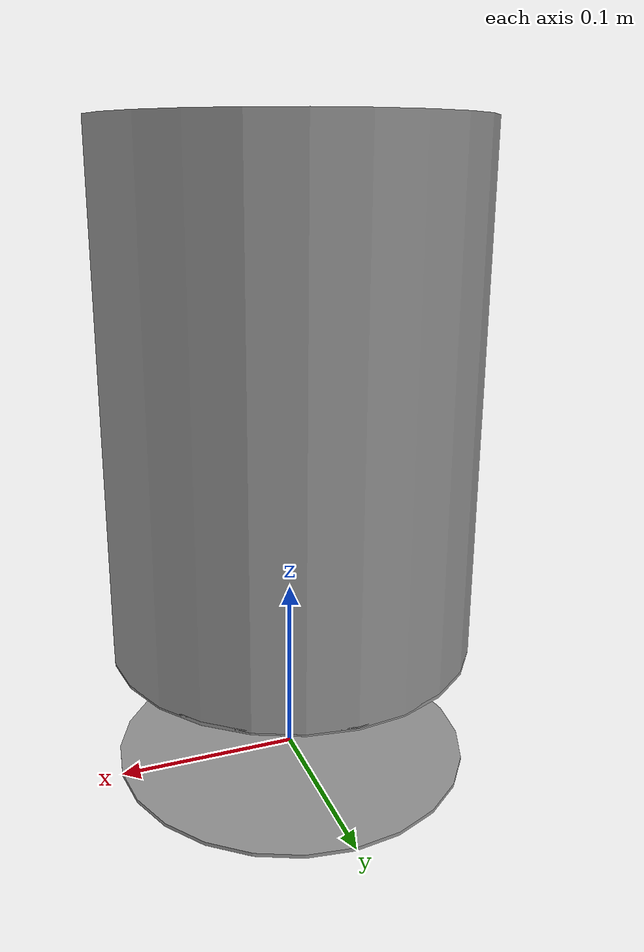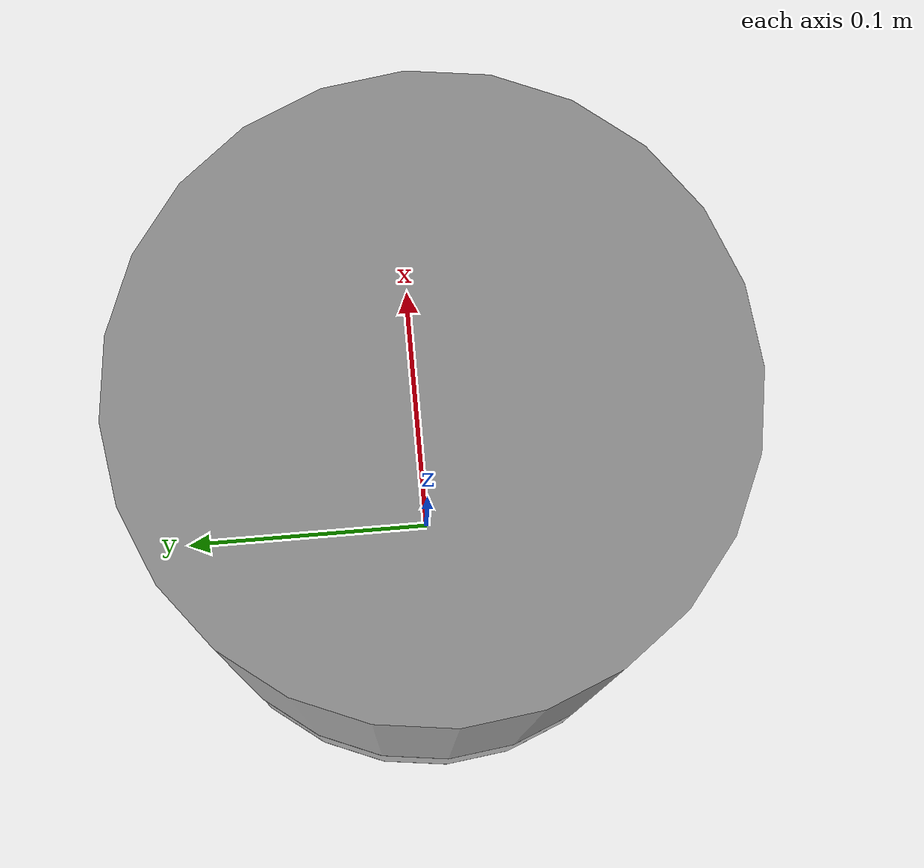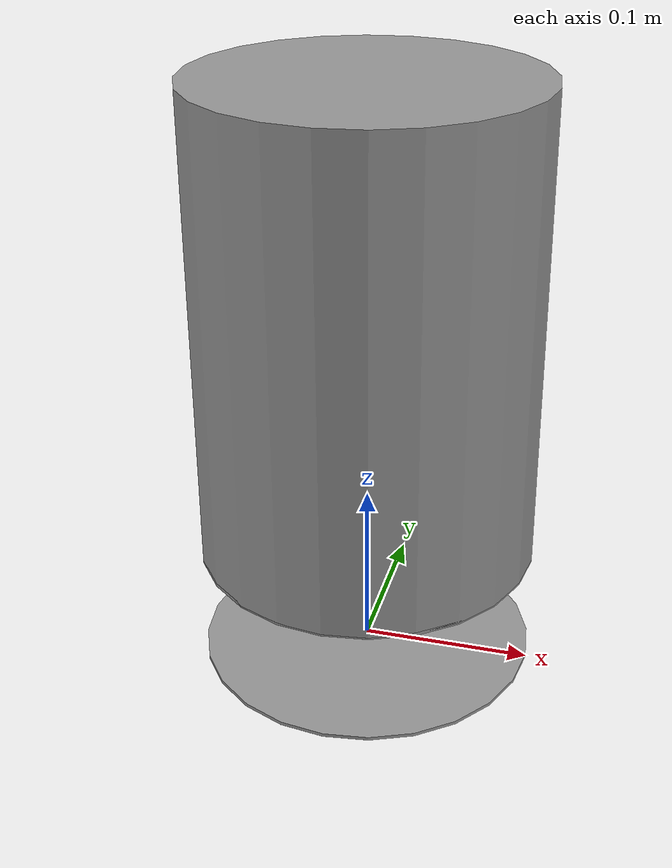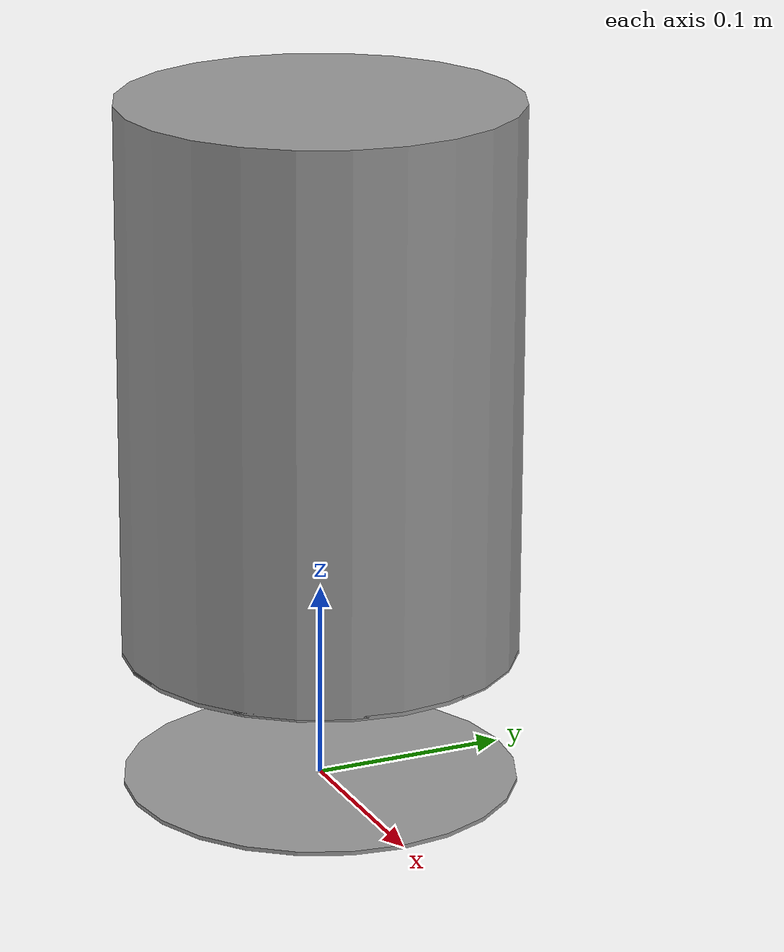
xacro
<?xml version="1.0"?>

<!-- XML namespaces -->
<robot xmlns:sensor="http://playerstage.sourceforge.net/gazebo/xmlschema/#sensor"
       xmlns:controller="http://playerstage.sourceforge.net/gazebo/xmlschema/#controller"
       xmlns:interface="http://playerstage.sourceforge.net/gazebo/xmlschema/#interface"
       xmlns:xacro="http://ros.org/wiki/xacro"
	   name="carry">

	<xacro:macro name="cyan1">
		<material name="cyan1">
			<color rgba="0 0.9 0.9 1.0"/>
		</material>
	</xacro:macro>

	<xacro:macro name="cyan2">
		<material name="cyan2">
	     <color rgba="0 0.7 0.7 1.0"/>
		</material>
	</xacro:macro>

	<xacro:macro name="cyan3">
		<material name="cyan3">
	     <color rgba="0 0.5 0.5 1.0"/>
		</material>
	</xacro:macro>

	<xacro:macro name="black">
		<material name="black">
			<color rgba="0.1 0.1 0.1 1.0"/>
		</material>
	</xacro:macro>

	<xacro:macro name="black1">
		<material name="black1">
			<color rgba="0.2 0.2 0.2 1.0"/>
		</material>
	</xacro:macro>

	<xacro:macro name="yellow2">
		<material name="yellow2">
			<color rgba="0.8 0.8 0 1.0"/>
		</material>
	</xacro:macro>

	<xacro:macro name="green1">
		<material name="green1">
			<color rgba="0 1 0 1.0"/>
		</material>
	</xacro:macro>

	<xacro:macro name="green2">
		<material name="green2">
			<color rgba="0.1 0.8 0 1.0"/>
		</material>
	</xacro:macro>

	<xacro:macro name="green3">
		<material name="green3">
			<color rgba="0.1 0.5 0.1 1.0"/>
		</material>
	</xacro:macro>

	<xacro:macro name="grey1">
		<material name="grey1">
			<color rgba="0.9 0.9 0.9 1.0"/>
		</material>
	</xacro:macro>

	<xacro:macro name="grey2">
		<material name="grey2">
			<color rgba="0.6 0.6 0.6 1.0"/>
		</material>
	</xacro:macro>

	<xacro:macro name="grey3">
		<material name="grey3">
			<color rgba="0.8 0.8 0.8 1.0"/>
		</material>
	</xacro:macro>

	<xacro:macro name="blue1">
		<material name="blue1">
			<color rgba="0 0 0.9 1.0"/>
		</material>
	</xacro:macro>

	<xacro:macro name="ax12_color">
		<material name="ax12_color">
			<color rgba="0.1 0.1 0.1 1.0"/>
		</material>
	</xacro:macro>

	<xacro:macro name="bracket_color">
		<material name="bracket_color">
			<color rgba="0.9 0.9 0.9 1.0"/>
		</material>
	</xacro:macro>

	<xacro:macro name="ax12" params="name xyz rpy">
		<link name="${name}">
			<visual>
				<origin xyz="${xyz}" rpy="${rpy}" />
				<geometry>
					<box size="0.5 0.32 0.38" />
				</geometry>
				<material name="black1">
					<color rgba="0.2 0.2 0.2 1.0"/>
				</material>
             </visual>
             <collision>
				<origin xyz="${xyz}" rpy="${rpy}" />
					<geometry>
						<box size="0.5 0.32 0.38" />
					</geometry>
             </collision>
             <xacro:default_inertial mass="0.055" />
        </link>
        <xacro:default_gazebo name="${name}" material="Gazebo/FlatBlack" />
	</xacro:macro>

	<xacro:macro name="bracket1" params="name xyz rpy">
		<link name="${name}">
			<visual>
				<origin xyz="${xyz}" rpy="${rpy}" />
				<geometry>
					<box size="0.05 0.025 0.038" />
				</geometry>
				<material name="black1">
					<color rgba="0.2 0.2 0.2 1.0"/>
				</material>
             </visual>
             <collision>
				<origin xyz="${xyz}" rpy="${rpy}" />
					<geometry>
						<box size="0.05 0.025 0.038" />
					</geometry>
             </collision>
             <xacro:default_inertial mass="0.02" />
        </link>
        <xacro:default_gazebo name="${name}" material="Gazebo/WhiteEmissive" />
	</xacro:macro>

	<xacro:macro name="my_box" params="name lwh xyz rpy mass material *rviz_color">
		<link name="${name}">
			<visual>
				<origin xyz="${xyz}" rpy="${rpy}" />
				<geometry>
					<box size="${lwh}" />
				</geometry>
			    <xacro:insert_block name="rviz_color" />
             </visual>
             <collision>
				<origin xyz="${xyz}" rpy="${rpy}" />
					<geometry>
						<box size="${lwh}" />
					</geometry>
             </collision>
             <xacro:default_inertial mass="${mass}" />
        </link>
        <xacro:default_gazebo name="${name}" material="${material}" />
	</xacro:macro>

	<xacro:macro name="my_cylinder" params="name l r xyz rpy mass material *rviz_color">
		<link name="${name}">
			<visual>
				<origin xyz="${xyz}" rpy="${rpy}" />
				<geometry>
					<cylinder length="${l}" radius="${r}" />
				</geometry>
            	<xacro:insert_block name="rviz_color" />
            </visual>
            <collision>
				<origin xyz="${xyz}" rpy="${rpy}" />
					<geometry>
						<cylinder length="${l}" radius="${r}" />
					</geometry>
            </collision>
            <xacro:default_inertial mass="${mass}" />
        </link>
        <xacro:default_gazebo name="${name}" material="${material}" />
	</xacro:macro>

    <xacro:macro name="default_inertial" params="mass">
		<inertial>
			<mass value="${mass}" />
			<inertia ixx="0.001" ixy="0.0" ixz="0.0"
                     iyy="0.001" iyz="0.0"
                     izz="0.001" />
			</inertial>
    </xacro:macro>

    <xacro:macro name="default_gazebo" params="name material">
 		<gazebo reference="${name}">
			<material>${material}</material>
			<selfCollide>false</selfCollide>
			<turnGravityOff>true</turnGravityOff>
		</gazebo>
    </xacro:macro>

 	<!-- ============================   Body   ============================ -->

        <xacro:my_cylinder name="carry_base_link" l="0.002" r="0.1" xyz="0 0 0" rpy="0 0 0" mass="0.5" material="Gazebo/Grey">
                <xacro:grey2 />
        </xacro:my_cylinder>

        <xacro:my_cylinder name="carry_lvl1_link" l="0.002" r="0.1" xyz="0 0 0" rpy="0 0 0" mass="0.5" material="Gazebo/Grey">
                <xacro:grey2 />
        </xacro:my_cylinder>

        <xacro:my_cylinder name="carry_body_link" l="0.280" r="0.1" xyz="0 0 0" rpy="0 0 0" mass="0.5" material="Gazebo/Grey">
                <xacro:grey2 />
        </xacro:my_cylinder>

        <xacro:my_cylinder name="carry_base_laser_link" l="0.002" r="0.05" xyz="0 0 0" rpy="0 0 0" mass="0.5" material="Gazebo/FlatBlack">
                <xacro:ax12_color />
        </xacro:my_cylinder>

        <xacro:my_cylinder name="carry_laser_nav_link" l="0.002" r="0.05" xyz="0 0 0" rpy="0 0 0" mass="0.5" material="Gazebo/FlatBlack">
                <xacro:ax12_color />
        </xacro:my_cylinder>

	<!-- =================== Joint Definitions ==================== -->

        <joint name="carry_lvl1_joint" type="fixed">
        <parent link="carry_base_link" />
        <child link="carry_lvl1_link" />
        <origin xyz="0 0 0.07" rpy="0 0 0" />
        </joint>

        <joint name="carry_body_joint" type="fixed">
        <parent link="carry_lvl1_link" />
        <child link="carry_body_link" />
        <origin xyz="0.0 0.0 0.140" rpy="0 0 0" />
        </joint>

	<!-- =================== LASER Definitions ==================== -->

        <joint name="carry_base_laser_joint" type="fixed">
        <parent link="carry_lvl1_link" />
        <child link="carry_base_laser_link" />
        <origin xyz="0.0 0.0 -0.005" rpy="0 0 0.03" />
        </joint>

        <joint name="carry_neato_joint" type="fixed">
        <parent link="carry_base_laser_link" />
        <child link="carry_laser_nav_link" />
        <origin xyz="0 0.0 0.0" rpy="3.141592653 0 0" />
        </joint>

	<gazebo reference="carry">
  	</gazebo>
</robot>
